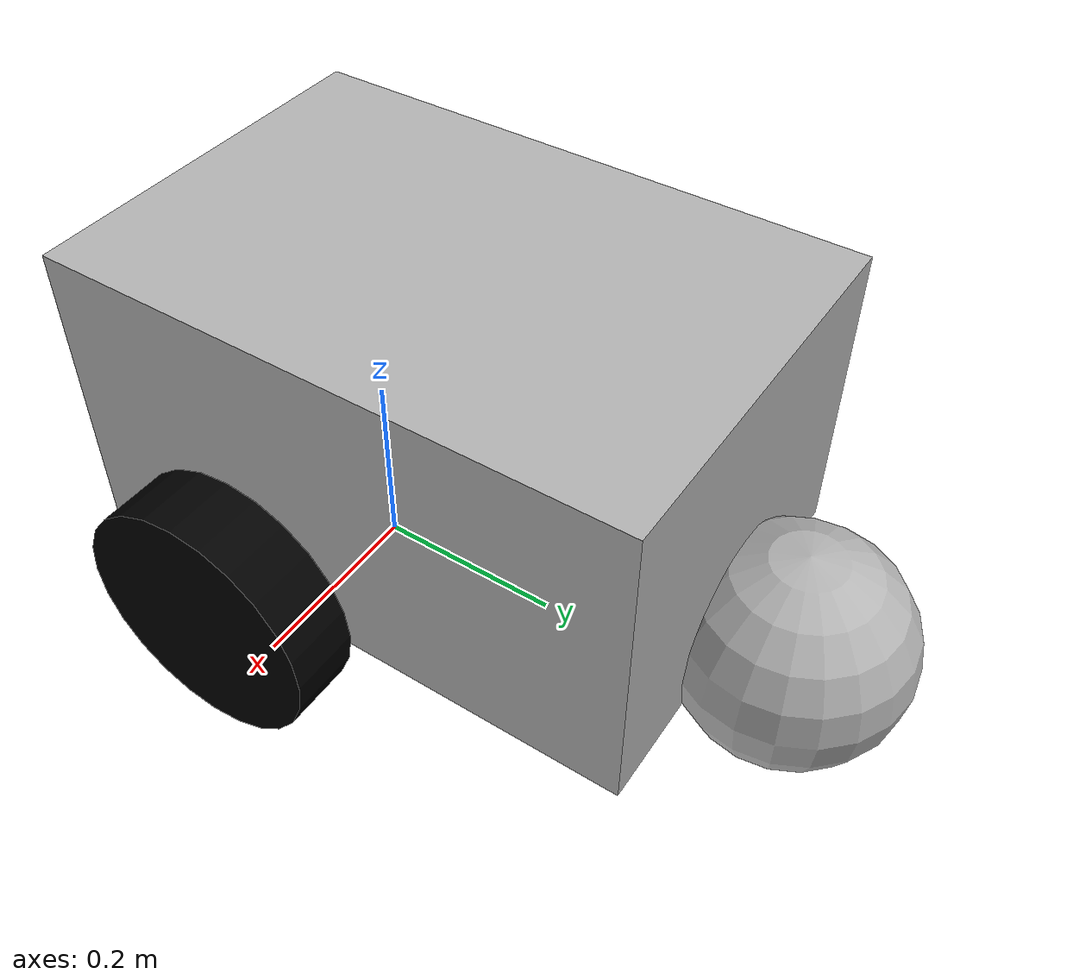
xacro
<?xml version="1.0"?>
<!-- Materials -->
<robot xmlns:xacro="http://www.ros.org/wiki/xacro" name="mp_500">

    <material name="Neobotix/Black">
        <color rgba="0.0 0.0 0.0 1.0"/>
    </material>

    <material name="Neobotix/Blue">
        <color rgba="0.0 0.0 0.8 1.0"/>
    </material>

    <material name="Neobotix/Green">
        <color rgba="0.0 0.8 0.0 1.0"/>
    </material>

    <material name="Neobotix/Grey">
        <color rgba="0.7 0.7 0.7 1.0"/>
    </material>

    <material name="Neobotix/Grey2">
        <color rgba="0.9 0.9 0.9 1.0"/>
    </material>

    <material name="Neobotix/Red">
        <color rgba="0.8 0.0 0.0 1.0"/>
    </material>

    <material name="Neobotix/White">
        <color rgba="1.0 1.0 1.0 1.0"/>
    </material>

    <material name="Neobotix/Yellow">
        <color rgba="1.0 1.0 0 10" />
    </material>

<!--++++++++++++++++++++++++++++++base_link++++++++++++++++++++++++++++++++++++++++++++++++++++-->
<!--++++++++++++++++++++body++++++++++++++++++++++++++++-->
  <link name="base_link">
	  <inertial>
		  <mass value="5.67" />
		    <origin xyz="0 0 0.01" rpy="0 0 0"/>
		    <inertia ixx="0.07" ixy="0.0" ixz="0.0"
		             iyy="0.08" iyz="0.0"
		             izz="0.1" />
	  </inertial>
      <visual name='body'>
        <!--origin xyz="0.0 0.0 0.234" rpy="0 0 1.57" /--><!-- for cylinder -->
	<!--origin xyz="0.0 0.0 0.09" rpy="0 0 0" /--><!-- for STL -->
          <origin xyz="0 0.10 0.244" rpy="0 0 0" />
            <geometry>
            <box size="0.400 0.600 0.320"/>
          <!--cylinder length="0.381" radius="0.2545"/-->
        </geometry>
        <material name="Neobotix/Grey" />
       </visual>
      <collision name='body_collision'>
        <origin xyz="0 0.10 0.244" rpy="0 0 0" />
        <geometry>
          <box size="0.400 0.600 0.320"/>
          <!--cylinder length="0.381" radius="0.2545"/-->
        </geometry>
      </collision>
</link>
<!--+++++++++++++++++++castor_front++++++++++++++++++++++++-->
<!--+++++++++++++++++++castor_back++++++++++++++++++++++++-->

<!--+++++++++++++++++++wheel_left_link++++++++++++++++++++++++-->
	<link name="wheel_left_link" type="wheel">
    	  <inertial>
      		<mass value="1.5" />
     		 <origin xyz="0 0 0.005" rpy="0 0 0" />
      		<inertia ixx="0.0051" ixy="0" ixz="0" iyy="0.0051" iyz="0" izz="0.009" />
    	  </inertial>

    <visual>
        <origin xyz="-0.255 0.005 0" rpy="0 1.57 0" />
     	<!--origin xyz="-0.255 0.005 0" rpy="0 0 0" /-->
     	<geometry>
		<!--mesh filename="package://neo_mp_500/robot_model/mp_500/meshes/WHEEL2.STL" scale="0.01 0.01 0.01" /-->
                <cylinder radius="0.125" length="0.07"/>
     	</geometry>
     	<material name="Neobotix/Black" />
    </visual>
    <collision>
     	<origin xyz="-0.255 0.005 0" rpy="0 1.57 0" />
     	<geometry>
        	<cylinder radius="0.125" length="0.07"/>
     	</geometry>
    </collision>

</link>

<!--+++++++++++++++++++wheel_left_joint++++++++++++++++++++++++-->
	<joint name="wheel_left_joint" type="revolute">
		<origin xyz="0 0 0.13" rpy="0 0 0" />
    	<axis xyz="1 0 0"/>
    	<limit effort="1000.0" lower="-1e+16" upper="1e+16" velocity="3.5"/>
    	<joint_properties damping="0.0" friction="0.0" />
    	<parent link="base_link" />
    	<child link="wheel_left_link" />
    </joint>

<!--+++++++++++++++++++wheel_right_link++++++++++++++++++++++++-->
<link name="wheel_right_link" type="wheel">
	<inertial>
		  <mass value="1.5" />
		  <origin xyz="0 0 0.005" rpy="0 0 0" />
		  <inertia ixx="0.0051" ixy="0" ixz="0" iyy="0.0051" iyz="0" izz="0.009" />
	</inertial>

		<visual>
                        <origin xyz="0.255 0.005 0" rpy="0 1.57 0" />
		 	<geometry>
		    	<cylinder radius="0.125" length="0.07"/>
		 	</geometry>
                <material name="Neobotix/Black"/>
		</visual>

		<collision>
		 	<origin xyz="0.255 0.005 0" rpy="0 1.57 0" />
		 	<geometry>
		    	<cylinder radius="0.125" length="0.07"/>
		 	</geometry>
		</collision>
	</link>

<!--+++++++++++++++++++wheel_right_joint++++++++++++++++++++++++-->
	<joint name="wheel_right_joint" type="revolute">
    	<origin xyz="0 0 0.13" rpy="0 0 0" />
    	<axis xyz="1 0 0"/>
    	<limit effort="1000.0" lower="-1e+16" upper="1e+16" velocity="3.5"/>
    	<joint_properties damping="0.0" friction="0.0" />
    	<parent link="base_link" />
    	<child link="wheel_right_link" />
    </joint>

<!--+++++++++++++++++++laserscanner_front_joint++++++++++++++++++++++++-->
	<joint name="laserscanner_front_joint" type="fixed">
		  <axis xyz="0 0 1" />
		  <origin xyz="0 -0.244 0.141" rpy="0 3.14 0" />
		  <parent link="base_link"/>
		  <child link="laserscanner_front_link"/>
	</joint>

<!--+++++++++++++++++++laserscanner_front_link++++++++++++++++++++++++-->
	<link name="laserscanner_front_link" type="laser">
		<inertial>
			<mass value="0.001" />
			<origin xyz="0 0 0" rpy="0 0 0" />
			<inertia ixx="0.0001" ixy="0" ixz="0" iyy="0.000001" iyz="0" izz="0.0001" />
	  	</inertial>
	  	<visual>
			<origin xyz="0 0 -0.04" rpy="0 0 3.14" />
			<geometry>
                             <cylinder length="0.154" radius="0.053" />
                             <!--mesh filename="package://neo_mp_500/robot_model/mp_500/meshes/SICK-S300.STL" /-->
			</geometry>
			<material name="Neobotix/Yellow" />
	  	</visual>
	  	<collision>
			<origin xyz="0 0 -0.04" rpy="0 0 3.14" />
			<geometry>
		  	<cylinder length="0.154" radius="0.053" />
			</geometry>
	  	</collision>
	</link>
<!--+++++++++++++++ wheel_hanger+++++++++++++++++++++++++++-->
<link name="hanger">
	<inertial>
		  <mass value="0.5" />
		  <origin xyz="0 0 0" rpy="0 0 0" />
		  <inertia ixx="0.00051" ixy="0" ixz="0" iyy="0.00051" iyz="0" izz="0.0009" />
	</inertial>
	<visual>
                 <origin xyz="0 0.23 0" rpy="0 0 0" />
		 <geometry>
          	 <sphere radius="0.115"/>
		 </geometry>
		 <material name="Neobotix/Grey" />
	</visual>
        <collision>
		 <origin xyz="0 0.23 0" rpy="0 0 0" />
		 <geometry>
          	 <sphere radius="0.115"/>
		 </geometry>
	</collision>
</link>

<joint name="hanger_joint" type="fixed">
    	<origin xyz="-0.004 0.23 0.12" rpy="0 0 0"/>
    	<axis xyz="0 0 1"/>
        <limit effort="1000.0" lower="-1e+16" upper="1e+16" velocity="3.5"/>
    	<joint_properties damping="0.0" friction="0.0" />
    	<parent link="base_link" />
    	<child link="hanger" />
    </joint>

<!--+++++++++++++++++++hanger_joint++++++++++++++++++++++++-->
<!--+++++++++++++++++++wheel_front_joint++++++++++++++++++++++++-->

<!--+++++++++++++++++++castor++++++++++++++++++++++++-->

<transmission name="wheel_left">
    <type>transmission_interface/SimpleTransmission</type>
    <joint name="wheel_left_joint">
      <hardwareInterface>EffortJointInterface</hardwareInterface>
    </joint>
    <actuator name="wheel_left_joint_motor">
      <hardwareInterface>EffortJointInterface</hardwareInterface>
      <mechanicalReduction>1</mechanicalReduction>
    </actuator>
  </transmission>

  <transmission name="wheel_right">
    <type>transmission_interface/SimpleTransmission</type>
    <joint name="wheel_right_joint">
      <hardwareInterface>EffortJointInterface</hardwareInterface>
    </joint>
    <actuator name="wheel_right_joint_motor">
      <hardwareInterface>EffortJointInterface</hardwareInterface>
      <mechanicalReduction>1</mechanicalReduction>
    </actuator>
  </transmission>

    <gazebo>
      <plugin name="differential_drive_controller" filename="libdiffdrive_plugin.so">
        <robotNamespace>mp_500</robotNamespace>
      </plugin>
    </gazebo>

</robot>
